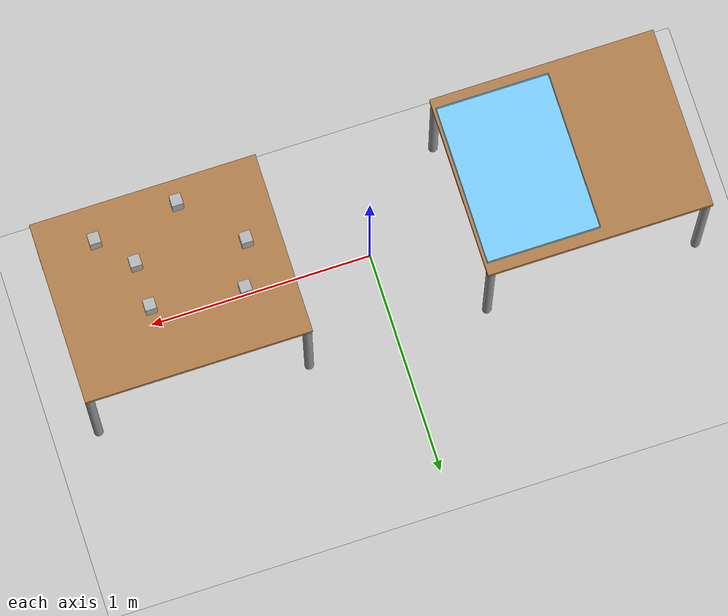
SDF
<sdf version="1.4">
 <world name="default">
  <physics type="ode">
   <gravity>0 0 -9.81</gravity>
   <ode>
    <solver><type>quick</type><iters>20</iters><sor>1</sor></solver>
    <constraints>
     <cfm>0</cfm>
     <erp>0.2</erp>
     <contact_max_correcting_vel>100</contact_max_correcting_vel>
     <contact_surface_layer>0</contact_surface_layer>
    </constraints>
   </ode>
   <real_time_update_rate>1000</real_time_update_rate>
   <max_step_size>0.001</max_step_size>
   <real_time_factor>1</real_time_factor>
  </physics>
  <light name="light1" type="directional">
   <pose>-2 0 4 0 -0 0</pose>
   <diffuse>1 1 1 1</diffuse>
   <specular>0.1 0.1 0.1 1</specular>
   <attenuation>
    <range>20</range>
    <constant>0.9</constant>
    <linear>0.01</linear>
    <quadratic>0.001</quadratic>
   </attenuation>
   <direction>0.2 0 -1</direction>
  </light>
  <model name="ground_plane">
   <static>1</static>
   <link name="link">
    <collision name="collision">
     <geometry><plane><normal>0 0 1</normal><size>100 100</size></plane></geometry>
     <surface><friction><ode><mu>100</mu><mu2>50</mu2></ode></friction></surface>
    </collision>
    <visual name="visual">
     <cast_shadows>0</cast_shadows>
     <geometry><plane><normal>0 0 1</normal><size>100 100</size></plane></geometry>
     <material>
      <script><uri>file://media/materials/scripts/gazebo.material</uri><name>Gazebo/Grey</name></script>
     </material>
    </visual>
    <velocity_decay><linear>0</linear><angular>0</angular></velocity_decay>
   </link>
  </model>
  <model name="table1">
   <static>1</static>
   <link name="link">
    <collision name="surface">
     <pose>0 0 0.8 0 -0 0</pose>
     <geometry><box><size>1 0.8 0.03</size></box></geometry>
    </collision>
    <visual name="visual1">
     <pose>0 0 0.8 0 -0 0</pose>
     <geometry><box><size>1 0.8 0.03</size></box></geometry>
     <material>
      <script><uri>file://media/materials/scripts/gazebo.material</uri><name>Gazebo/Wood</name></script>
     </material>
    </visual>
    <collision name="front_left_leg">
     <pose>0.48 0.38 0.4 0 -0 0</pose>
     <geometry><cylinder><radius>0.02</radius><length>0.8</length></cylinder></geometry>
    </collision>
    <visual name="front_left_leg">
     <pose>0.48 0.38 0.4 0 -0 0</pose>
     <geometry><cylinder><radius>0.02</radius><length>0.8</length></cylinder></geometry>
     <material>
      <script><uri>file://media/materials/scripts/gazebo.material</uri><name>Gazebo/Grey</name></script>
     </material>
    </visual>
    <collision name="front_right_leg">
     <pose>0.48 -0.38 0.4 0 -0 0</pose>
     <geometry><cylinder><radius>0.02</radius><length>0.8</length></cylinder></geometry>
    </collision>
    <visual name="front_right_leg">
     <pose>0.48 -0.38 0.4 0 -0 0</pose>
     <geometry><cylinder><radius>0.02</radius><length>0.8</length></cylinder></geometry>
     <material>
      <script><uri>file://media/materials/scripts/gazebo.material</uri><name>Gazebo/Grey</name></script>
     </material>
    </visual>
    <collision name="back_right_leg">
     <pose>-0.48 -0.38 0.4 0 -0 0</pose>
     <geometry><cylinder><radius>0.02</radius><length>0.8</length></cylinder></geometry>
    </collision>
    <visual name="back_right_leg">
     <pose>-0.48 -0.38 0.4 0 -0 0</pose>
     <geometry><cylinder><radius>0.02</radius><length>0.8</length></cylinder></geometry>
     <material>
      <script><uri>file://media/materials/scripts/gazebo.material</uri><name>Gazebo/Grey</name></script>
     </material>
    </visual>
    <collision name="back_left_leg">
     <pose>-0.48 0.38 0.4 0 -0 0</pose>
     <geometry><cylinder><radius>0.02</radius><length>0.8</length></cylinder></geometry>
    </collision>
    <visual name="back_left_leg">
     <pose>-0.48 0.38 0.4 0 -0 0</pose>
     <geometry><cylinder><radius>0.02</radius><length>0.8</length></cylinder></geometry>
     <material>
      <script><uri>file://media/materials/scripts/gazebo.material</uri><name>Gazebo/Grey</name></script>
     </material>
    </visual>
    <velocity_decay><linear>0</linear><angular>0</angular></velocity_decay>
   </link>
   <pose>0.88 0 0 0 -0 0</pose>
  </model>
  <model name="aruco_cube1">
   <static>0</static>
   <link name="link">
    <inertial>
     <mass>0.05</mass>
     <inertia>
      <ixx>5.2083e-05</ixx>
      <ixy>0</ixy>
      <ixz>0</ixz>
      <iyy>5.2083e-05</iyy>
      <iyz>0</iyz>
      <izz>2.0833e-05</izz>
     </inertia>
    </inertial>
    <collision name="colision">
     <geometry><box><size>0.05 0.05 0.1</size></box></geometry>
     <surface>
      <friction><ode><mu>30</mu><mu2>30</mu2><fdir1>0 0 0</fdir1></ode></friction>
      <contact><ode><kp>1e+06</kp><kd>100</kd><min_depth>0.0025</min_depth><max_vel>1</max_vel></ode></contact>
     </surface>
    </collision>
    <visual name="visual1">
     <geometry><mesh><uri>model://aruco_cube/meshes/aruco_cube_5cm.dae</uri><scale>1 1 2</scale></mesh></geometry>
    </visual>
    <velocity_decay><linear>0</linear><angular>0</angular></velocity_decay>
   </link>
   <pose>0.530067 -0.049784 0.863552 -0.004323 0.001344 -2e-06</pose>
  </model>
  <scene><ambient>0.4 0.4 0.4 1</ambient><background>0.7 0.7 0.7 1</background><shadows>1</shadows></scene>
  <spherical_coordinates>
   <surface_model>EARTH_WGS84</surface_model>
   <latitude_deg>0</latitude_deg>
   <longitude_deg>0</longitude_deg>
   <elevation>0</elevation>
   <heading_deg>0</heading_deg>
  </spherical_coordinates>
  <model name="aruco_cube2">
   <static>0</static>
   <link name="link">
    <inertial>
     <mass>0.05</mass>
     <inertia>
      <ixx>5.2083e-05</ixx>
      <ixy>0</ixy>
      <ixz>0</ixz>
      <iyy>5.2083e-05</iyy>
      <iyz>0</iyz>
      <izz>2.0833e-05</izz>
     </inertia>
    </inertial>
    <collision name="colision">
     <geometry><box><size>0.05 0.05 0.1</size></box></geometry>
     <surface>
      <friction><ode><mu>30</mu><mu2>30</mu2><fdir1>0 0 0</fdir1></ode></friction>
      <contact><ode><kp>1e+06</kp><kd>100</kd><min_depth>0.0025</min_depth><max_vel>1</max_vel></ode></contact>
     </surface>
    </collision>
    <visual name="visual1">
     <geometry><mesh><uri>model://aruco_cube2/meshes/aruco_cube_5cm.dae</uri><scale>1 1 2</scale></mesh></geometry>
    </visual>
    <velocity_decay><linear>0</linear><angular>0</angular></velocity_decay>
   </link>
   <pose>1.13778 -0.240675 0.862871 -0.006893 0.002139 0.003146</pose>
  </model>
  <model name="aruco_cube3">
   <static>0</static>
   <link name="link">
    <inertial>
     <mass>0.05</mass>
     <inertia>
      <ixx>5.2083e-05</ixx>
      <ixy>0</ixy>
      <ixz>0</ixz>
      <iyy>5.2083e-05</iyy>
      <iyz>0</iyz>
      <izz>2.0833e-05</izz>
     </inertia>
    </inertial>
    <collision name="colision">
     <geometry><box><size>0.05 0.05 0.1</size></box></geometry>
     <surface>
      <friction><ode><mu>30</mu><mu2>30</mu2><fdir1>0 0 0</fdir1></ode></friction>
      <contact><ode><kp>1e+06</kp><kd>100</kd><min_depth>0.0025</min_depth><max_vel>1</max_vel></ode></contact>
     </surface>
    </collision>
    <visual name="visual1">
     <geometry><mesh><uri>model://aruco_cube3/meshes/aruco_cube_5cm.dae</uri><scale>1 1 2</scale></mesh></geometry>
    </visual>
    <velocity_decay><linear>0</linear><angular>0</angular></velocity_decay>
   </link>
   <pose>1.00318 -0.095579 0.862844 -0.006773 0.002133 -5e-06</pose>
  </model>
  <model name="aruco_cube4">
   <static>0</static>
   <link name="link">
    <inertial>
     <mass>0.05</mass>
     <inertia>
      <ixx>5.2083e-05</ixx>
      <ixy>0</ixy>
      <ixz>0</ixz>
      <iyy>5.2083e-05</iyy>
      <iyz>0</iyz>
      <izz>2.0833e-05</izz>
     </inertia>
    </inertial>
    <collision name="colision">
     <geometry><box><size>0.05 0.05 0.1</size></box></geometry>
     <surface>
      <friction><ode><mu>30</mu><mu2>30</mu2><fdir1>0 0 0</fdir1></ode></friction>
      <contact><ode><kp>1e+06</kp><kd>100</kd><min_depth>0.0025</min_depth><max_vel>1</max_vel></ode></contact>
     </surface>
    </collision>
    <visual name="visual1">
     <geometry><mesh><uri>model://aruco_cube4/meshes/aruco_cube_5cm.dae</uri><scale>1 1 2</scale></mesh></geometry>
    </visual>
    <velocity_decay><linear>0</linear><angular>0</angular></velocity_decay>
   </link>
   <pose>1 0.099936 0.863214 -0.004946 0.001541 9e-05</pose>
  </model>
  <model name="aruco_cube5">
   <static>0</static>
   <link name="link">
    <inertial>
     <mass>0.05</mass>
     <inertia>
      <ixx>5.2083e-05</ixx>
      <ixy>0</ixy>
      <ixz>0</ixz>
      <iyy>5.2083e-05</iyy>
      <iyz>0</iyz>
      <izz>2.0833e-05</izz>
     </inertia>
    </inertial>
    <collision name="colision">
     <geometry><box><size>0.05 0.05 0.1</size></box></geometry>
     <surface>
      <friction><ode><mu>30</mu><mu2>30</mu2><fdir1>0 0 0</fdir1></ode></friction>
      <contact><ode><kp>1e+06</kp><kd>100</kd><min_depth>0.0025</min_depth><max_vel>1</max_vel></ode></contact>
     </surface>
    </collision>
    <visual name="visual1">
     <geometry><mesh><uri>model://aruco_cube5/meshes/aruco_cube_5cm.dae</uri><scale>1 1 2</scale></mesh></geometry>
    </visual>
    <velocity_decay><linear>0</linear><angular>0</angular></velocity_decay>
   </link>
   <pose>0.760482 -0.292449 0.863228 -0.004879 0.00152 -3e-06</pose>
  </model>
  <model name="aruco_cube6">
   <static>0</static>
   <link name="link">
    <inertial>
     <mass>0.05</mass>
     <inertia>
      <ixx>5.2083e-05</ixx>
      <ixy>0</ixy>
      <ixz>0</ixz>
      <iyy>5.2083e-05</iyy>
      <iyz>0</iyz>
      <izz>2.0833e-05</izz>
     </inertia>
    </inertial>
    <collision name="colision">
     <geometry><box><size>0.05 0.05 0.1</size></box></geometry>
     <surface>
      <friction><ode><mu>30</mu><mu2>30</mu2><fdir1>0 0 0</fdir1></ode></friction>
      <contact><ode><kp>1e+06</kp><kd>100</kd><min_depth>0.0025</min_depth><max_vel>1</max_vel></ode></contact>
     </surface>
    </collision>
    <visual name="visual1">
     <geometry><mesh><uri>model://aruco_cube5/meshes/aruco_cube_5cm.dae</uri><scale>1 1 2</scale></mesh></geometry>
    </visual>
    <velocity_decay><linear>0</linear><angular>0</angular></velocity_decay>
   </link>
   <pose>0.596141 0.149088 0.863537 -0.004879 0.00152 -3e-06</pose>
  </model>
  <model name="table">
   <static>1</static>
   <link name="link">
    <collision name="surface">
     <pose>0 0 0.8 0 -0 0</pose>
     <geometry><box><size>1 0.8 0.03</size></box></geometry>
    </collision>
    <visual name="visual1">
     <pose>0 0 0.8 0 -0 0</pose>
     <geometry><box><size>1 0.8 0.03</size></box></geometry>
     <material>
      <script><uri>file://media/materials/scripts/gazebo.material</uri><name>Gazebo/Wood</name></script>
     </material>
    </visual>
    <collision name="front_left_leg">
     <pose>0.48 0.38 0.4 0 -0 0</pose>
     <geometry><cylinder><radius>0.02</radius><length>0.8</length></cylinder></geometry>
    </collision>
    <visual name="front_left_leg">
     <pose>0.48 0.38 0.4 0 -0 0</pose>
     <geometry><cylinder><radius>0.02</radius><length>0.8</length></cylinder></geometry>
     <material>
      <script><uri>file://media/materials/scripts/gazebo.material</uri><name>Gazebo/Grey</name></script>
     </material>
    </visual>
    <collision name="front_right_leg">
     <pose>0.48 -0.38 0.4 0 -0 0</pose>
     <geometry><cylinder><radius>0.02</radius><length>0.8</length></cylinder></geometry>
    </collision>
    <visual name="front_right_leg">
     <pose>0.48 -0.38 0.4 0 -0 0</pose>
     <geometry><cylinder><radius>0.02</radius><length>0.8</length></cylinder></geometry>
     <material>
      <script><uri>file://media/materials/scripts/gazebo.material</uri><name>Gazebo/Grey</name></script>
     </material>
    </visual>
    <collision name="back_right_leg">
     <pose>-0.48 -0.38 0.4 0 -0 0</pose>
     <geometry><cylinder><radius>0.02</radius><length>0.8</length></cylinder></geometry>
    </collision>
    <visual name="back_right_leg">
     <pose>-0.48 -0.38 0.4 0 -0 0</pose>
     <geometry><cylinder><radius>0.02</radius><length>0.8</length></cylinder></geometry>
     <material>
      <script><uri>file://media/materials/scripts/gazebo.material</uri><name>Gazebo/Grey</name></script>
     </material>
    </visual>
    <collision name="back_left_leg">
     <pose>-0.48 0.38 0.4 0 -0 0</pose>
     <geometry><cylinder><radius>0.02</radius><length>0.8</length></cylinder></geometry>
    </collision>
    <visual name="back_left_leg">
     <pose>-0.48 0.38 0.4 0 -0 0</pose>
     <geometry><cylinder><radius>0.02</radius><length>0.8</length></cylinder></geometry>
     <material>
      <script><uri>file://media/materials/scripts/gazebo.material</uri><name>Gazebo/Grey</name></script>
     </material>
    </visual>
    <velocity_decay><linear>0</linear><angular>0</angular></velocity_decay>
   </link>
   <pose>-0.893919 0 0 0 -0 0</pose>
  </model>
  <model name="kit_tray">
   <static>1</static>
   <plugin name="kit_tray_plugin" filename="libROSAriacKitTrayPlugin.so">
    <contact_sensor_name>kit_tray_contact</contact_sensor_name>
    <update_rate>20</update_rate>
   </plugin>
   <link name="tray">
    <sensor name="kit_tray_contact" type="contact">
     <update_rate>1</update_rate>
     <contact><collision>tray_collision</collision><topic>__default_topic__</topic></contact>
    </sensor>
    <collision name="tray_collision"><geometry><box><size>0.5 0.7 0.001</size></box></geometry></collision>
    <collision name="tray_collision1">
     <pose>0.25 0 0.0127 0 -0 0</pose>
     <geometry><box><size>0.001 0.7 0.0254</size></box></geometry>
    </collision>
    <visual name="tray_visual1">
     <pose>0.25 0 0.0127 0 -0 0</pose>
     <geometry><box><size>0.001 0.7 0.0254</size></box></geometry>
     <material><ambient>0.486275 0.819608 1 1</ambient><diffuse>0.486275 0.819608 1 1</diffuse></material>
    </visual>
    <collision name="tray_collision2">
     <pose>-0.25 0 0.0127 0 -0 0</pose>
     <geometry><box><size>0.001 0.7 0.0254</size></box></geometry>
    </collision>
    <visual name="tray_visual2">
     <pose>-0.25 0 0.0127 0 -0 0</pose>
     <geometry><box><size>0.001 0.7 0.0254</size></box></geometry>
     <material><ambient>0.486275 0.819608 1 1</ambient><diffuse>0.486275 0.819608 1 1</diffuse></material>
    </visual>
    <collision name="tray_collision3">
     <pose>0 0.35 0.0127 0 -0 0</pose>
     <geometry><box><size>0.5 0.001 0.0254</size></box></geometry>
    </collision>
    <visual name="tray_visual3">
     <pose>0 0.35 0.0127 0 -0 0</pose>
     <geometry><box><size>0.5 0.001 0.0254</size></box></geometry>
     <material><ambient>0.486275 0.819608 1 1</ambient><diffuse>0.486275 0.819608 1 1</diffuse></material>
    </visual>
    <collision name="tray_collision4">
     <pose>0 -0.35 0.0127 0 -0 0</pose>
     <geometry><box><size>0.5 0.001 0.0254</size></box></geometry>
    </collision>
    <visual name="tray_visual4">
     <pose>0 -0.35 0.0127 0 -0 0</pose>
     <geometry><box><size>0.5 0.001 0.0254</size></box></geometry>
     <material><ambient>0.486275 0.819608 1 1</ambient><diffuse>0.486275 0.819608 1 1</diffuse></material>
    </visual>
    <visual name="visual">
     <geometry><box><size>0.5 0.7 0.001</size></box></geometry>
     <material><ambient>0.486275 0.819608 1 1</ambient><diffuse>0.486275 0.819608 1 1</diffuse></material>
    </visual>
    <velocity_decay><linear>0</linear><angular>0</angular></velocity_decay>
   </link>
   <allow_auto_disable>0</allow_auto_disable>
   <pose>-0.657216 0 0.81928 0 -0 0</pose>
  </model>
 </world>
</sdf>
